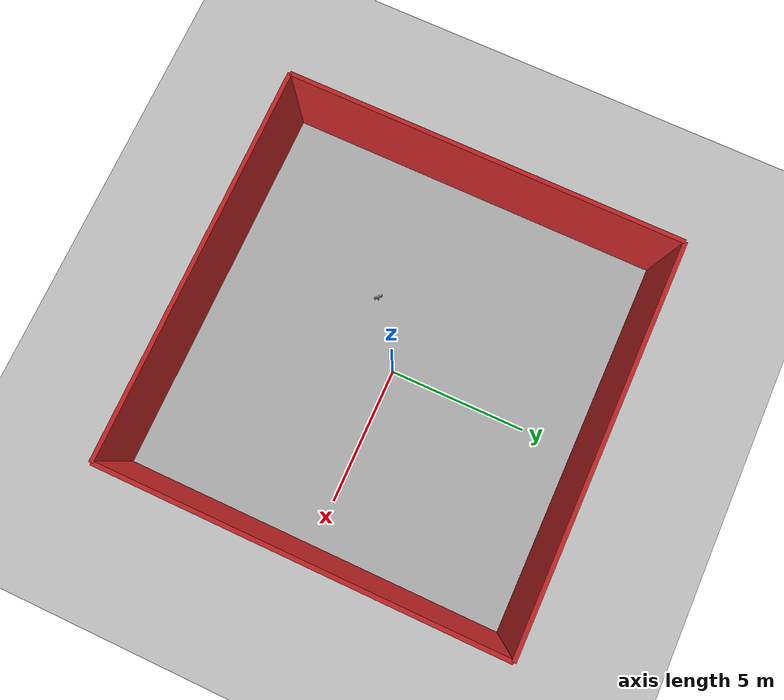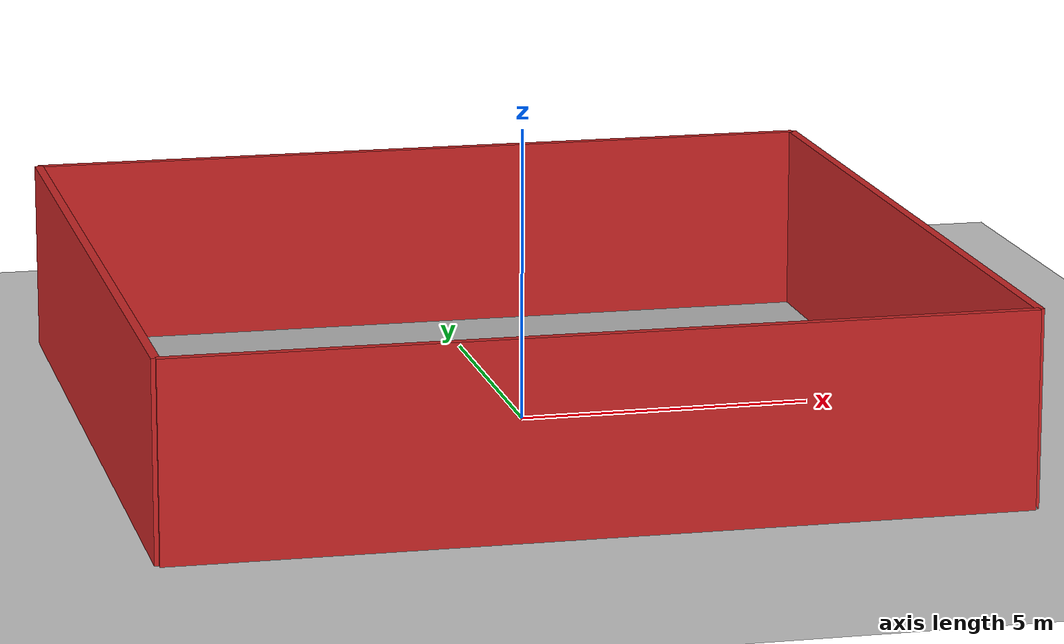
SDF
<sdf version="1.7">
 <world name="default">
  <model name="ground_plane">
   <static>1</static>
   <link name="link">
    <collision name="collision">
     <geometry><plane><normal>0 0 1</normal><size>100 100</size></plane></geometry>
     <surface><friction><ode><mu>100</mu><mu2>50</mu2></ode></friction></surface>
    </collision>
    <visual name="visual">
     <cast_shadows>0</cast_shadows>
     <geometry><plane><normal>0 0 1</normal><size>100 100</size></plane></geometry>
     <material>
      <script><uri>file://media/materials/scripts/gazebo.material</uri><name>Gazebo/Grey</name></script>
     </material>
    </visual>
   </link>
  </model>
  <model name="paredladrillo">
   <pose>-0.28097 -0.036634 0 0 -0 0</pose>
   <link name="Wall_0">
    <collision name="Wall_0_Collision">
     <geometry><box><size>14 0.15 4</size></box></geometry>
     <pose>0 0 1.25 0 -0 0</pose>
    </collision>
    <visual name="Wall_0_Visual">
     <pose>0 0 1.25 0 -0 0</pose>
     <geometry><box><size>14 0.15 4</size></box></geometry>
     <material>
      <script>
       <uri>model://paredladrillo/materials/scripts</uri>
       <uri>model://paredladrillo/materials/textures</uri>
       <name>textur/pared</name>
      </script>
      <ambient>1 1 1 1</ambient>
     </material>
     <meta><layer>0</layer></meta>
    </visual>
    <pose>-7 -0 0 0 -0 1.5708</pose>
   </link>
   <link name="Wall_1">
    <collision name="Wall_1_Collision">
     <geometry><box><size>14 0.15 4</size></box></geometry>
     <pose>0 0 1.25 0 -0 0</pose>
    </collision>
    <visual name="Wall_1_Visual">
     <pose>0 0 1.25 0 -0 0</pose>
     <geometry><box><size>14 0.15 4</size></box></geometry>
     <material>
      <script>
       <uri>model://paredladrillo/materials/scripts</uri>
       <uri>model://paredladrillo/materials/textures</uri>
       <name>textur/pared</name>
      </script>
      <ambient>1 1 1 1</ambient>
     </material>
     <meta><layer>0</layer></meta>
    </visual>
    <pose>1e-06 7 0 0 -0 0</pose>
   </link>
   <link name="Wall_2">
    <collision name="Wall_2_Collision">
     <geometry><box><size>14 0.15 4</size></box></geometry>
     <pose>0 0 1.25 0 -0 0</pose>
    </collision>
    <visual name="Wall_2_Visual">
     <pose>0 0 1.25 0 -0 0</pose>
     <geometry><box><size>14 0.15 4</size></box></geometry>
     <material>
      <script>
       <uri>model://paredladrillo/materials/scripts</uri>
       <uri>model://paredladrillo/materials/textures</uri>
       <name>textur/pared</name>
      </script>
      <ambient>1 1 1 1</ambient>
     </material>
     <meta><layer>0</layer></meta>
    </visual>
    <pose>7 -0 0 0 -0 -1.5708</pose>
   </link>
   <link name="Wall_3">
    <collision name="Wall_3_Collision">
     <geometry><box><size>14 0.15 4</size></box></geometry>
     <pose>0 0 1.25 0 -0 0</pose>
    </collision>
    <visual name="Wall_3_Visual">
     <pose>0 0 1.25 0 -0 0</pose>
     <geometry><box><size>14 0.15 4</size></box></geometry>
     <material>
      <script>
       <uri>model://paredladrillo/materials/scripts</uri>
       <uri>model://paredladrillo/materials/textures</uri>
       <name>textur/pared</name>
      </script>
      <ambient>1 1 1 1</ambient>
     </material>
     <meta><layer>0</layer></meta>
    </visual>
    <pose>1e-06 -7 0 0 -0 3.14159</pose>
   </link>
   <static>1</static>
  </model>
  <model name="piso_plano">
   <link name="link_0">
    <inertial>
     <mass>14.2171</mass>
     <inertia><ixx>310.23</ixx><ixy>0</ixy><ixz>0</ixz><iyy>311.692</iyy><iyz>0</iyz><izz>621.915</izz></inertia>
    </inertial>
    <visual name="visual">
     <geometry><box><size>14 14 0.024508</size></box></geometry>
     <material>
      <lighting>1</lighting>
      <script>
       <uri>model://piso_plano/materials/scripts</uri>
       <uri>model://piso_plano/materials/textures</uri>
       <name>textur/pis</name>
      </script>
      <shader type="pixel"/>
     </material>
    </visual>
    <collision name="collision">
     <geometry><box><size>14 14 0.024508</size></box></geometry>
     <surface>
      <friction>
       <ode><mu>1</mu><mu2>1</mu2><fdir1>0 0 0</fdir1><slip1>0</slip1><slip2>0</slip2></ode>
       <torsional>
        <coefficient>1</coefficient>
        <patch_radius>0</patch_radius>
        <surface_radius>0</surface_radius>
        <use_patch_radius>1</use_patch_radius>
        <ode><slip>0</slip></ode>
       </torsional>
      </friction>
      <bounce><restitution_coefficient>0</restitution_coefficient><threshold>1e+06</threshold></bounce>
      <contact>
       <collide_without_contact>0</collide_without_contact>
       <collide_without_contact_bitmask>1</collide_without_contact_bitmask>
       <collide_bitmask>1</collide_bitmask>
       <ode>
        <soft_cfm>0</soft_cfm>
        <soft_erp>0.2</soft_erp>
        <kp>1e+13</kp>
        <kd>1</kd>
        <max_vel>0.01</max_vel>
        <min_depth>0</min_depth>
       </ode>
       <bullet>
        <split_impulse>1</split_impulse>
        <split_impulse_penetration_threshold>-0.01</split_impulse_penetration_threshold>
        <soft_cfm>0</soft_cfm>
        <soft_erp>0.2</soft_erp>
        <kp>1e+13</kp>
        <kd>1</kd>
       </bullet>
      </contact>
     </surface>
    </collision>
   </link>
   <static>1</static>
   <pose>-0.240554 -0.064653 0 0 -0 0</pose>
  </model>
  <model name="letrero_fresa_3">
   <link name="link_0">
    <inertial>
     <mass>0.00543151</mass>
     <inertia>
      <ixx>4.90351e-06</ixx>
      <ixy>0</ixy>
      <ixz>0</ixz>
      <iyy>4.90351e-06</iyy>
      <iyz>0</iyz>
      <izz>1.12837e-07</izz>
     </inertia>
    </inertial>
    <pose>0.002372 -0.000902 -0.178803 0 -0 0</pose>
    <visual name="visual">
     <geometry><cylinder><radius>0.0203836</radius><length>0.327243</length></cylinder></geometry>
     <material>
      <lighting>1</lighting>
      <script>
       <uri>model://letrero_fresa/madera/scripts</uri>
       <uri>model://letrero_fresa/madera/textures</uri>
       <name>textur/madera</name>
      </script>
      <shader type="pixel"/>
      <emissive>0 0 0 1</emissive>
     </material>
    </visual>
    <collision name="collision">
     <geometry><cylinder><radius>0.020384</radius><length>0.327243</length></cylinder></geometry>
     <surface>
      <friction>
       <ode><mu>1</mu><mu2>1</mu2><fdir1>0 0 0</fdir1><slip1>0</slip1><slip2>0</slip2></ode>
       <torsional>
        <coefficient>1</coefficient>
        <patch_radius>0</patch_radius>
        <surface_radius>0</surface_radius>
        <use_patch_radius>1</use_patch_radius>
        <ode><slip>0</slip></ode>
       </torsional>
      </friction>
      <bounce><restitution_coefficient>0</restitution_coefficient><threshold>1e+06</threshold></bounce>
      <contact>
       <collide_without_contact>0</collide_without_contact>
       <collide_without_contact_bitmask>1</collide_without_contact_bitmask>
       <collide_bitmask>1</collide_bitmask>
       <ode>
        <soft_cfm>0</soft_cfm>
        <soft_erp>0.2</soft_erp>
        <kp>1e+13</kp>
        <kd>1</kd>
        <max_vel>0.01</max_vel>
        <min_depth>0</min_depth>
       </ode>
       <bullet>
        <split_impulse>1</split_impulse>
        <split_impulse_penetration_threshold>-0.01</split_impulse_penetration_threshold>
        <soft_cfm>0</soft_cfm>
        <soft_erp>0.2</soft_erp>
        <kp>1e+13</kp>
        <kd>1</kd>
       </bullet>
      </contact>
     </surface>
    </collision>
   </link>
   <link name="link_1">
    <inertial>
     <mass>0.00299633</mass>
     <inertia>
      <ixx>1.27855e-05</ixx>
      <ixy>0</ixy>
      <ixz>0</ixz>
      <iyy>3.42923e-05</iyy>
      <iyz>0</iyz>
      <izz>2.25402e-05</izz>
     </inertia>
    </inertial>
    <pose>-0.001685 -0.003559 0.089666 0 -0 0</pose>
    <visual name="visual">
     <geometry><box><size>0.296988 0.04549 0.221665</size></box></geometry>
     <material>
      <lighting>1</lighting>
      <script>
       <uri>model://letrero_fresa/madera/scripts</uri>
       <uri>model://letrero_fresa/madera/textures</uri>
       <name>textur/madera</name>
      </script>
      <shader type="pixel"/>
      <emissive>0 0 0 1</emissive>
     </material>
    </visual>
    <collision name="collision">
     <geometry><box><size>0.296988 0.04549 0.221665</size></box></geometry>
     <surface>
      <friction>
       <ode><mu>1</mu><mu2>1</mu2><fdir1>0 0 0</fdir1><slip1>0</slip1><slip2>0</slip2></ode>
       <torsional>
        <coefficient>1</coefficient>
        <patch_radius>0</patch_radius>
        <surface_radius>0</surface_radius>
        <use_patch_radius>1</use_patch_radius>
        <ode><slip>0</slip></ode>
       </torsional>
      </friction>
      <bounce><restitution_coefficient>0</restitution_coefficient><threshold>1e+06</threshold></bounce>
      <contact>
       <collide_without_contact>0</collide_without_contact>
       <collide_without_contact_bitmask>1</collide_without_contact_bitmask>
       <collide_bitmask>1</collide_bitmask>
       <ode>
        <soft_cfm>0</soft_cfm>
        <soft_erp>0.2</soft_erp>
        <kp>1e+13</kp>
        <kd>1</kd>
        <max_vel>0.01</max_vel>
        <min_depth>0</min_depth>
       </ode>
       <bullet>
        <split_impulse>1</split_impulse>
        <split_impulse_penetration_threshold>-0.01</split_impulse_penetration_threshold>
        <soft_cfm>0</soft_cfm>
        <soft_erp>0.2</soft_erp>
        <kp>1e+13</kp>
        <kd>1</kd>
       </bullet>
      </contact>
     </surface>
    </collision>
   </link>
   <link name="link_2">
    <inertial>
     <mass>0.00219695</mass>
     <inertia>
      <ixx>5.34209e-06</ixx>
      <ixy>0</ixy>
      <ixz>0</ixz>
      <iyy>1.31531e-05</iyy>
      <iyz>0</iyz>
      <izz>9.31738e-06</izz>
     </inertia>
    </inertial>
    <pose>-0.001275 -0.005928 0.089136 0 -0 0</pose>
    <visual name="visual">
     <geometry><box><size>0.216284 0.06414 0.15832</size></box></geometry>
     <material>
      <lighting>1</lighting>
      <script>
       <uri>model://letrero_fresa/materials/scripts</uri>
       <uri>model://letrero_fresa/materials/textures</uri>
       <name>textur/difre</name>
      </script>
      <shader type="pixel"/>
      <emissive>0 0 0 1</emissive>
     </material>
    </visual>
    <collision name="collision">
     <geometry><box><size>0.216284 0.06414 0.15832</size></box></geometry>
     <surface>
      <friction>
       <ode><mu>1</mu><mu2>1</mu2><fdir1>0 0 0</fdir1><slip1>0</slip1><slip2>0</slip2></ode>
       <torsional>
        <coefficient>1</coefficient>
        <patch_radius>0</patch_radius>
        <surface_radius>0</surface_radius>
        <use_patch_radius>1</use_patch_radius>
        <ode><slip>0</slip></ode>
       </torsional>
      </friction>
      <bounce><restitution_coefficient>0</restitution_coefficient><threshold>1e+06</threshold></bounce>
      <contact>
       <collide_without_contact>0</collide_without_contact>
       <collide_without_contact_bitmask>1</collide_without_contact_bitmask>
       <collide_bitmask>1</collide_bitmask>
       <ode>
        <soft_cfm>0</soft_cfm>
        <soft_erp>0.2</soft_erp>
        <kp>1e+13</kp>
        <kd>1</kd>
        <max_vel>0.01</max_vel>
        <min_depth>0</min_depth>
       </ode>
       <bullet>
        <split_impulse>1</split_impulse>
        <split_impulse_penetration_threshold>-0.01</split_impulse_penetration_threshold>
        <soft_cfm>0</soft_cfm>
        <soft_erp>0.2</soft_erp>
        <kp>1e+13</kp>
        <kd>1</kd>
       </bullet>
      </contact>
     </surface>
    </collision>
   </link>
   <joint name="link_0_JOINT_1" type="fixed">
    <parent>link_0</parent>
    <child>link_1</child>
    <physics>
     <ode><limit><cfm>0</cfm><erp>0.2</erp></limit><suspension><cfm>0</cfm><erp>0.2</erp></suspension></ode>
    </physics>
   </joint>
   <joint name="link_0_JOINT_2" type="fixed">
    <parent>link_0</parent>
    <child>link_2</child>
    <physics>
     <ode><limit><cfm>0</cfm><erp>0.2</erp></limit><suspension><cfm>0</cfm><erp>0.2</erp></suspension></ode>
    </physics>
   </joint>
   <static>1</static>
   <pose>-2.17205 -1.55153 0.33443 0 0 -0.746644</pose>
  </model>
 </world>
</sdf>
